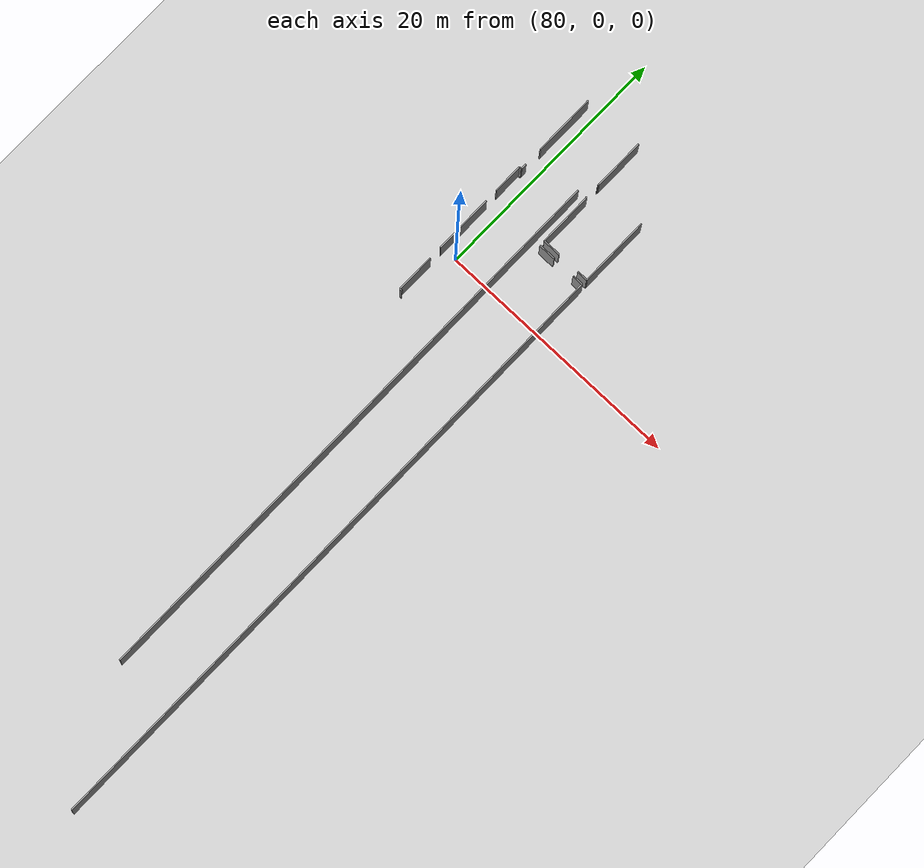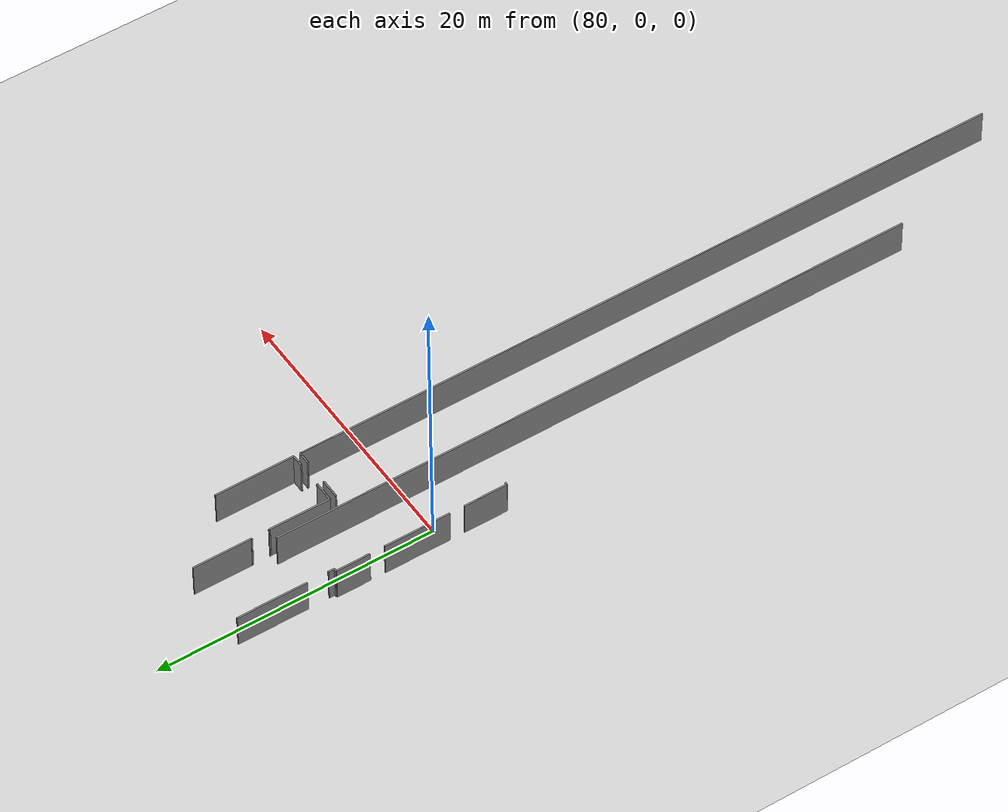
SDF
<sdf version="1.6">
 <world name="default">
  <model name="ground_plane">
   <static>1</static>
   <link name="link">
    <collision name="collision">
     <geometry><plane><normal>0 0 1</normal><size>100 100</size></plane></geometry>
     <surface><friction><ode><mu>100</mu><mu2>50</mu2></ode></friction></surface>
    </collision>
    <visual name="visual">
     <cast_shadows>0</cast_shadows>
     <geometry><plane><normal>0 0 1</normal><size>100 100</size></plane></geometry>
     <material>
      <script><uri>file://media/materials/scripts/gazebo.material</uri><name>Gazebo/Grey</name></script>
     </material>
    </visual>
   </link>
  </model>
  <model name="0510035739_A_40_1_102">
   <static>1</static>
   <link name="Wall_998">
    <collision name="Wall_998_Collision">
     <geometry><box><size>0.173719677065 0.1 2.5</size></box></geometry>
     <pose>0.0868598385324 0 1.25 0 0 0</pose>
    </collision>
    <visual name="Wall_998_Visual">
     <pose>0.0868598385324 0 1.25 0 0 0</pose>
     <geometry><box><size>0.173719677065 0.1 2.5</size></box></geometry>
     <material>
      <script><uri>file://media/materials/scripts/gazebo.material</uri><name>Gazebo/Grey</name></script>
      <ambient>1 1 1 1</ambient>
     </material>
    </visual>
    <pose>171.581549544 -54.5637712963 0 0 0 3.14159265359</pose>
   </link>
   <link name="Wall_999">
    <collision name="Wall_999_Collision">
     <geometry><box><size>3.13637886173 0.1 2.5</size></box></geometry>
     <pose>1.56818943086 0 1.25 0 0 0</pose>
    </collision>
    <visual name="Wall_999_Visual">
     <pose>1.56818943086 0 1.25 0 0 0</pose>
     <geometry><box><size>3.13637886173 0.1 2.5</size></box></geometry>
     <material>
      <script><uri>file://media/materials/scripts/gazebo.material</uri><name>Gazebo/Grey</name></script>
      <ambient>1 1 1 1</ambient>
     </material>
    </visual>
    <pose>171.407829867 -54.5637712963 0 0 0 1.57079632679</pose>
   </link>
   <link name="Wall_1000">
    <collision name="Wall_1000_Collision">
     <geometry><box><size>4.7714325378 0.1 2.5</size></box></geometry>
     <pose>2.3857162689 0 1.25 0 0 0</pose>
    </collision>
    <visual name="Wall_1000_Visual">
     <pose>2.3857162689 0 1.25 0 0 0</pose>
     <geometry><box><size>4.7714325378 0.1 2.5</size></box></geometry>
     <material>
      <script><uri>file://media/materials/scripts/gazebo.material</uri><name>Gazebo/Grey</name></script>
      <ambient>1 1 1 1</ambient>
     </material>
    </visual>
    <pose>171.407829867 -50.3616400462 0 0 0 1.57079632679</pose>
   </link>
   <link name="Wall_1001">
    <collision name="Wall_1001_Collision">
     <geometry><box><size>2.42596217649 0.1 2.5</size></box></geometry>
     <pose>1.21298108824 0 1.25 0 0 0</pose>
    </collision>
    <visual name="Wall_1001_Visual">
     <pose>1.21298108824 0 1.25 0 0 0</pose>
     <geometry><box><size>2.42596217649 0.1 2.5</size></box></geometry>
     <material>
      <script><uri>file://media/materials/scripts/gazebo.material</uri><name>Gazebo/Grey</name></script>
      <ambient>1 1 1 1</ambient>
     </material>
    </visual>
    <pose>171.407829867 -44.5201248642 0 0 0 1.57079632679</pose>
   </link>
   <link name="Wall_1002">
    <collision name="Wall_1002_Collision">
     <geometry><box><size>0.197663444871 0.1 2.5</size></box></geometry>
     <pose>0.0988317224357 0 1.25 0 0 0</pose>
    </collision>
    <visual name="Wall_1002_Visual">
     <pose>0.0988317224357 0 1.25 0 0 0</pose>
     <geometry><box><size>0.197663444871 0.1 2.5</size></box></geometry>
     <material>
      <script><uri>file://media/materials/scripts/gazebo.material</uri><name>Gazebo/Grey</name></script>
      <ambient>1 1 1 1</ambient>
     </material>
    </visual>
    <pose>171.407829867 -42.0941626877 0 0 0 0.0</pose>
   </link>
   <link name="Wall_1003">
    <collision name="Wall_1003_Collision">
     <geometry><box><size>0.459771286073 0.1 2.5</size></box></geometry>
     <pose>0.229885643037 0 1.25 0 0 0</pose>
    </collision>
    <visual name="Wall_1003_Visual">
     <pose>0.229885643037 0 1.25 0 0 0</pose>
     <geometry><box><size>0.459771286073 0.1 2.5</size></box></geometry>
     <material>
      <script><uri>file://media/materials/scripts/gazebo.material</uri><name>Gazebo/Grey</name></script>
      <ambient>1 1 1 1</ambient>
     </material>
    </visual>
    <pose>171.605493312 -42.0941626877 0 0 0 1.57079632679</pose>
   </link>
   <link name="Wall_1004">
    <collision name="Wall_1004_Collision">
     <geometry><box><size>5.05773886774 0.1 2.5</size></box></geometry>
     <pose>2.52886943387 0 1.25 0 0 0</pose>
    </collision>
    <visual name="Wall_1004_Visual">
     <pose>2.52886943387 0 1.25 0 0 0</pose>
     <geometry><box><size>5.05773886774 0.1 2.5</size></box></geometry>
     <material>
      <script><uri>file://media/materials/scripts/gazebo.material</uri><name>Gazebo/Grey</name></script>
      <ambient>1 1 1 1</ambient>
     </material>
    </visual>
    <pose>171.605493312 -40.1205848902 0 0 0 1.57079632679</pose>
   </link>
   <link name="Wall_1011">
    <collision name="Wall_1011_Collision">
     <geometry><box><size>47.1371277413 0.1 2.5</size></box></geometry>
     <pose>23.5685638706 0 1.25 0 0 0</pose>
    </collision>
    <visual name="Wall_1011_Visual">
     <pose>23.5685638706 0 1.25 0 0 0</pose>
     <geometry><box><size>47.1371277413 0.1 2.5</size></box></geometry>
     <material>
      <script><uri>file://media/materials/scripts/gazebo.material</uri><name>Gazebo/Grey</name></script>
      <ambient>1 1 1 1</ambient>
     </material>
    </visual>
    <pose>175.654027838 -40.4372030113 0 0 0 -1.57079632679</pose>
   </link>
   <link name="Wall_1044">
    <collision name="Wall_1044_Collision">
     <geometry><box><size>4.42170069526 0.1 2.5</size></box></geometry>
     <pose>2.21085034763 0 1.25 0 0 0</pose>
    </collision>
    <visual name="Wall_1044_Visual">
     <pose>2.21085034763 0 1.25 0 0 0</pose>
     <geometry><box><size>4.42170069526 0.1 2.5</size></box></geometry>
     <material>
      <script><uri>file://media/materials/scripts/gazebo.material</uri><name>Gazebo/Grey</name></script>
      <ambient>1 1 1 1</ambient>
     </material>
    </visual>
    <pose>176.465823455 -44.8392901946 0 0 0 1.57079632679</pose>
   </link>
   <link name="Wall_1045">
    <collision name="Wall_1045_Collision">
     <geometry><box><size>0.0807465361137 0.1 2.5</size></box></geometry>
     <pose>0.0403732680569 0 1.25 0 0 0</pose>
    </collision>
    <visual name="Wall_1045_Visual">
     <pose>0.0403732680569 0 1.25 0 0 0</pose>
     <geometry><box><size>0.0807465361137 0.1 2.5</size></box></geometry>
     <material>
      <script><uri>file://media/materials/scripts/gazebo.material</uri><name>Gazebo/Grey</name></script>
      <ambient>1 1 1 1</ambient>
     </material>
    </visual>
    <pose>176.465823455 -40.4175894994 0 0 0 3.14159265359</pose>
   </link>
   <link name="Wall_1046">
    <collision name="Wall_1046_Collision">
     <geometry><box><size>0.0685199312763 0.1 2.5</size></box></geometry>
     <pose>0.0342599656382 0 1.25 0 0 0</pose>
    </collision>
    <visual name="Wall_1046_Visual">
     <pose>0.0342599656382 0 1.25 0 0 0</pose>
     <geometry><box><size>0.0685199312763 0.1 2.5</size></box></geometry>
     <material>
      <script><uri>file://media/materials/scripts/gazebo.material</uri><name>Gazebo/Grey</name></script>
      <ambient>1 1 1 1</ambient>
     </material>
    </visual>
    <pose>176.385076919 -39.1348148752 0 0 0 0.0</pose>
   </link>
   <link name="Wall_1047">
    <collision name="Wall_1047_Collision">
     <geometry><box><size>4.22250892478 0.1 2.5</size></box></geometry>
     <pose>2.11125446239 0 1.25 0 0 0</pose>
    </collision>
    <visual name="Wall_1047_Visual">
     <pose>2.11125446239 0 1.25 0 0 0</pose>
     <geometry><box><size>4.22250892478 0.1 2.5</size></box></geometry>
     <material>
      <script><uri>file://media/materials/scripts/gazebo.material</uri><name>Gazebo/Grey</name></script>
      <ambient>1 1 1 1</ambient>
     </material>
    </visual>
    <pose>176.453596851 -39.1348148752 0 0 0 1.57079632679</pose>
   </link>
   <link name="Wall_1050">
    <collision name="Wall_1050_Collision">
     <geometry><box><size>5.72867380819 0.1 2.5</size></box></geometry>
     <pose>2.8643369041 0 1.25 0 0 0</pose>
    </collision>
    <visual name="Wall_1050_Visual">
     <pose>2.8643369041 0 1.25 0 0 0</pose>
     <geometry><box><size>5.72867380819 0.1 2.5</size></box></geometry>
     <material>
      <script><uri>file://media/materials/scripts/gazebo.material</uri><name>Gazebo/Grey</name></script>
      <ambient>1 1 1 1</ambient>
     </material>
    </visual>
    <pose>180.639935403 -39.1121447121 0 0 0 -1.57079632679</pose>
   </link>
   <link name="Wall_1051">
    <collision name="Wall_1051_Collision">
     <geometry><box><size>0.875475850545 0.1 2.5</size></box></geometry>
     <pose>0.437737925273 0 1.25 0 0 0</pose>
    </collision>
    <visual name="Wall_1051_Visual">
     <pose>0.437737925273 0 1.25 0 0 0</pose>
     <geometry><box><size>0.875475850545 0.1 2.5</size></box></geometry>
     <material>
      <script><uri>file://media/materials/scripts/gazebo.material</uri><name>Gazebo/Grey</name></script>
      <ambient>1 1 1 1</ambient>
     </material>
    </visual>
    <pose>180.639935403 -44.8408185202 0 0 0 3.14159265359</pose>
   </link>
   <link name="Wall_1052">
    <collision name="Wall_1052_Collision">
     <geometry><box><size>1.45496677834 0.1 2.5</size></box></geometry>
     <pose>0.727483389171 0 1.25 0 0 0</pose>
    </collision>
    <visual name="Wall_1052_Visual">
     <pose>0.727483389171 0 1.25 0 0 0</pose>
     <geometry><box><size>1.45496677834 0.1 2.5</size></box></geometry>
     <material>
      <script><uri>file://media/materials/scripts/gazebo.material</uri><name>Gazebo/Grey</name></script>
      <ambient>1 1 1 1</ambient>
     </material>
    </visual>
    <pose>177.920789431 -44.8408185202 0 0 0 3.14054223381</pose>
   </link>
   <link name="Wall_1054">
    <collision name="Wall_1054_Collision">
     <geometry><box><size>1.41675783553 0.1 2.5</size></box></geometry>
     <pose>0.708378917767 0 1.25 0 0 0</pose>
    </collision>
    <visual name="Wall_1054_Visual">
     <pose>0.708378917767 0 1.25 0 0 0</pose>
     <geometry><box><size>1.41675783553 0.1 2.5</size></box></geometry>
     <material>
      <script><uri>file://media/materials/scripts/gazebo.material</uri><name>Gazebo/Grey</name></script>
      <ambient>1 1 1 1</ambient>
     </material>
    </visual>
    <pose>176.466332897 -45.2990614807 0 0 0 0.0</pose>
   </link>
   <link name="Wall_1055">
    <collision name="Wall_1055_Collision">
     <geometry><box><size>0.876240013347 0.1 2.5</size></box></geometry>
     <pose>0.438120006674 0 1.25 0 0 0</pose>
    </collision>
    <visual name="Wall_1055_Visual">
     <pose>0.438120006674 0 1.25 0 0 0</pose>
     <geometry><box><size>0.876240013347 0.1 2.5</size></box></geometry>
     <material>
      <script><uri>file://media/materials/scripts/gazebo.material</uri><name>Gazebo/Grey</name></script>
      <ambient>1 1 1 1</ambient>
     </material>
    </visual>
    <pose>179.734657203 -45.2990614807 0 0 0 0.0</pose>
   </link>
   <link name="Wall_1056">
    <collision name="Wall_1056_Collision">
     <geometry><box><size>52.1732153296 0.1 2.5</size></box></geometry>
     <pose>26.0866076648 0 1.25 0 0 0</pose>
    </collision>
    <visual name="Wall_1056_Visual">
     <pose>26.0866076648 0 1.25 0 0 0</pose>
     <geometry><box><size>52.1732153296 0.1 2.5</size></box></geometry>
     <material>
      <script><uri>file://media/materials/scripts/gazebo.material</uri><name>Gazebo/Grey</name></script>
      <ambient>1 1 1 1</ambient>
     </material>
    </visual>
    <pose>180.610897216 -45.2990614807 0 0 0 -1.57079632679</pose>
   </link>
   <pose>-92.5 49.8157534709 0 0 0 0</pose>
  </model>
 </world>
</sdf>
